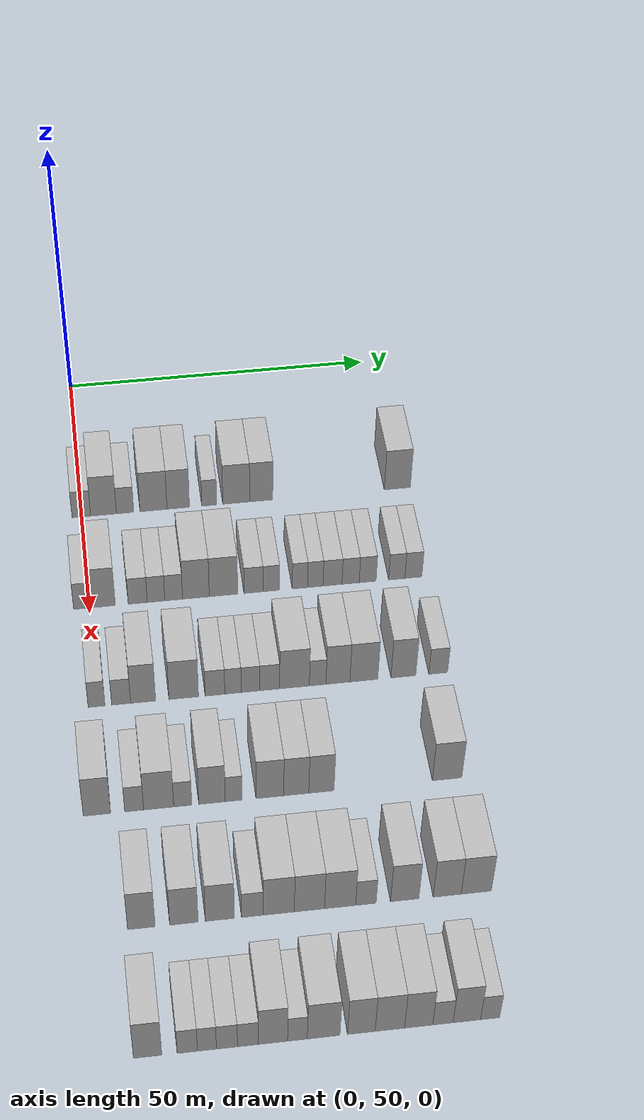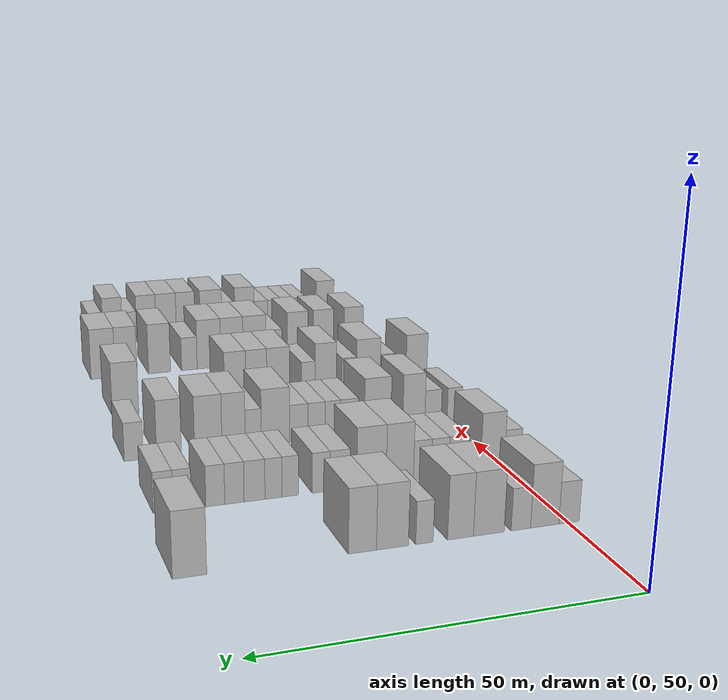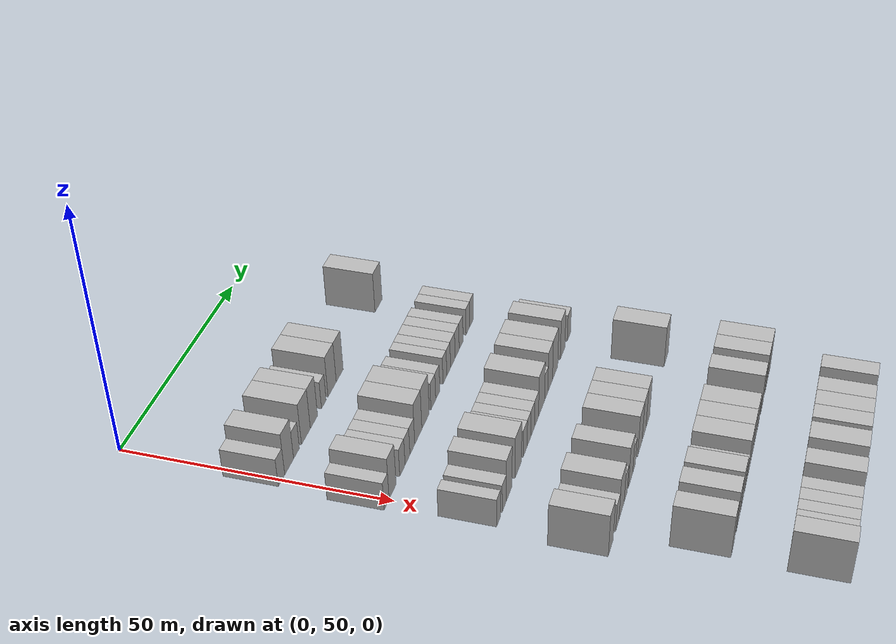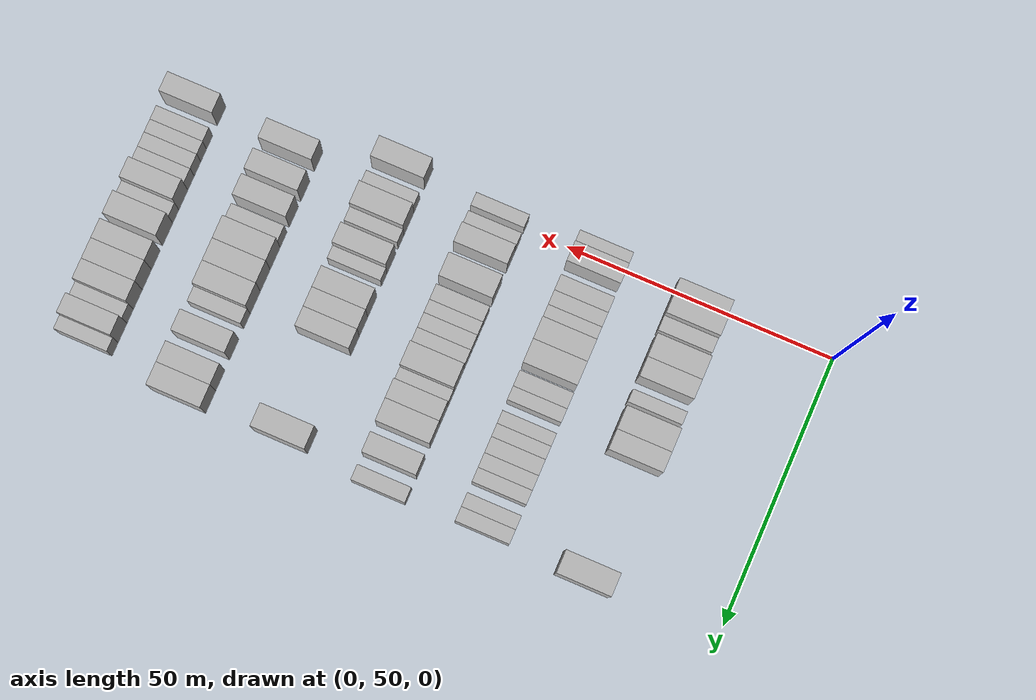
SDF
<sdf version="1.6">
 <world name="default">
  <model name="building_107">
   <static>1</static>
   <pose>25.0000 49.9032 0 0.000000 0.000000 0.000000</pose>
   <link name="link">
    <pose>0 0 3.00 0 0 0</pose>
    <collision name="collision"><geometry><box><size>10.0000 2.9846 6.0000</size></box></geometry></collision>
    <visual name="visual">
     <cast_shadows>0</cast_shadows>
     <geometry><box><size>10.0000 2.9846 6.0000</size></box></geometry>
     <material>
      <script>
       <uri>model://HANNAS_wall/materials/scripts</uri>
       <uri>model://HANNAS_wall/materials/textures</uri>
       <name>vrc/HANNAS_wall</name>
      </script>
     </material>
    </visual>
   </link>
  </model>
  <model name="building_108">
   <static>1</static>
   <pose>25.0000 53.4667 0 0.000000 0.000000 0.000000</pose>
   <link name="link">
    <pose>0 0 4.50 0 0 0</pose>
    <collision name="collision"><geometry><box><size>10.0000 4.1426 9.0000</size></box></geometry></collision>
    <visual name="visual">
     <cast_shadows>0</cast_shadows>
     <geometry><box><size>10.0000 4.1426 9.0000</size></box></geometry>
     <material>
      <script>
       <uri>model://HANNAS_wall/materials/scripts</uri>
       <uri>model://HANNAS_wall/materials/textures</uri>
       <name>vrc/HANNAS_wall</name>
      </script>
     </material>
    </visual>
   </link>
  </model>
  <model name="building_109">
   <static>1</static>
   <pose>25.0000 56.9367 0 0.000000 0.000000 0.000000</pose>
   <link name="link">
    <pose>0 0 3.00 0 0 0</pose>
    <collision name="collision"><geometry><box><size>10.0000 2.7974 6.0000</size></box></geometry></collision>
    <visual name="visual">
     <cast_shadows>0</cast_shadows>
     <geometry><box><size>10.0000 2.7974 6.0000</size></box></geometry>
     <material>
      <script>
       <uri>model://HANNAS_wall/materials/scripts</uri>
       <uri>model://HANNAS_wall/materials/textures</uri>
       <name>vrc/HANNAS_wall</name>
      </script>
     </material>
    </visual>
   </link>
  </model>
  <model name="building_110">
   <static>1</static>
   <pose>25.0000 61.5183 0 0.000000 0.000000 0.000000</pose>
   <link name="link">
    <pose>0 0 4.50 0 0 0</pose>
    <collision name="collision"><geometry><box><size>10.0000 4.3657 9.0000</size></box></geometry></collision>
    <visual name="visual">
     <cast_shadows>0</cast_shadows>
     <geometry><box><size>10.0000 4.3657 9.0000</size></box></geometry>
     <material>
      <script>
       <uri>model://HANNAS_wall/materials/scripts</uri>
       <uri>model://HANNAS_wall/materials/textures</uri>
       <name>vrc/HANNAS_wall</name>
      </script>
     </material>
    </visual>
   </link>
  </model>
  <model name="building_111">
   <static>1</static>
   <pose>25.0000 65.5187 0 0.000000 0.000000 0.000000</pose>
   <link name="link">
    <pose>0 0 4.50 0 0 0</pose>
    <collision name="collision"><geometry><box><size>10.0000 3.6352 9.0000</size></box></geometry></collision>
    <visual name="visual">
     <cast_shadows>0</cast_shadows>
     <geometry><box><size>10.0000 3.6352 9.0000</size></box></geometry>
     <material>
      <script>
       <uri>model://HANNAS_wall/materials/scripts</uri>
       <uri>model://HANNAS_wall/materials/textures</uri>
       <name>vrc/HANNAS_wall</name>
      </script>
     </material>
    </visual>
   </link>
  </model>
  <model name="building_112">
   <static>1</static>
   <pose>25.0000 70.5389 0 0.000000 0.000000 0.000000</pose>
   <link name="link">
    <pose>0 0 3.00 0 0 0</pose>
    <collision name="collision"><geometry><box><size>10.0000 2.4050 6.0000</size></box></geometry></collision>
    <visual name="visual">
     <cast_shadows>0</cast_shadows>
     <geometry><box><size>10.0000 2.4050 6.0000</size></box></geometry>
     <material>
      <script>
       <uri>model://HANNAS_wall/materials/scripts</uri>
       <uri>model://HANNAS_wall/materials/textures</uri>
       <name>vrc/HANNAS_wall</name>
      </script>
     </material>
    </visual>
   </link>
  </model>
  <model name="building_113">
   <static>1</static>
   <pose>25.0000 74.9182 0 0.000000 0.000000 0.000000</pose>
   <link name="link">
    <pose>0 0 4.50 0 0 0</pose>
    <collision name="collision"><geometry><box><size>10.0000 4.3535 9.0000</size></box></geometry></collision>
    <visual name="visual">
     <cast_shadows>0</cast_shadows>
     <geometry><box><size>10.0000 4.3535 9.0000</size></box></geometry>
     <material>
      <script>
       <uri>model://HANNAS_wall/materials/scripts</uri>
       <uri>model://HANNAS_wall/materials/textures</uri>
       <name>vrc/HANNAS_wall</name>
      </script>
     </material>
    </visual>
   </link>
  </model>
  <model name="building_114">
   <static>1</static>
   <pose>25.0000 78.9803 0 0.000000 0.000000 0.000000</pose>
   <link name="link">
    <pose>0 0 4.50 0 0 0</pose>
    <collision name="collision"><geometry><box><size>10.0000 3.7707 9.0000</size></box></geometry></collision>
    <visual name="visual">
     <cast_shadows>0</cast_shadows>
     <geometry><box><size>10.0000 3.7707 9.0000</size></box></geometry>
     <material>
      <script>
       <uri>model://HANNAS_wall/materials/scripts</uri>
       <uri>model://HANNAS_wall/materials/textures</uri>
       <name>vrc/HANNAS_wall</name>
      </script>
     </material>
    </visual>
   </link>
  </model>
  <model name="building_115">
   <static>1</static>
   <pose>25.0000 101.2923 0 0.000000 0.000000 0.000000</pose>
   <link name="link">
    <pose>0 0 4.50 0 0 0</pose>
    <collision name="collision"><geometry><box><size>10.0000 4.2845 9.0000</size></box></geometry></collision>
    <visual name="visual">
     <cast_shadows>0</cast_shadows>
     <geometry><box><size>10.0000 4.2845 9.0000</size></box></geometry>
     <material>
      <script>
       <uri>model://HANNAS_wall/materials/scripts</uri>
       <uri>model://HANNAS_wall/materials/textures</uri>
       <name>vrc/HANNAS_wall</name>
      </script>
     </material>
    </visual>
   </link>
  </model>
  <model name="building_266">
   <static>1</static>
   <pose>44.0000 48.8604 0 0.000000 0.000000 0.000000</pose>
   <link name="link">
    <pose>0 0 3.00 0 0 0</pose>
    <collision name="collision"><geometry><box><size>10.0000 2.6639 6.0000</size></box></geometry></collision>
    <visual name="visual">
     <cast_shadows>0</cast_shadows>
     <geometry><box><size>10.0000 2.6639 6.0000</size></box></geometry>
     <material>
      <script>
       <uri>model://HANNAS_wall/materials/scripts</uri>
       <uri>model://HANNAS_wall/materials/textures</uri>
       <name>vrc/HANNAS_wall</name>
      </script>
     </material>
    </visual>
   </link>
  </model>
  <model name="building_267">
   <static>1</static>
   <pose>44.0000 52.0807 0 0.000000 0.000000 0.000000</pose>
   <link name="link">
    <pose>0 0 4.50 0 0 0</pose>
    <collision name="collision"><geometry><box><size>10.0000 3.7768 9.0000</size></box></geometry></collision>
    <visual name="visual">
     <cast_shadows>0</cast_shadows>
     <geometry><box><size>10.0000 3.7768 9.0000</size></box></geometry>
     <material>
      <script>
       <uri>model://HANNAS_wall/materials/scripts</uri>
       <uri>model://HANNAS_wall/materials/textures</uri>
       <name>vrc/HANNAS_wall</name>
      </script>
     </material>
    </visual>
   </link>
  </model>
  <model name="building_268">
   <static>1</static>
   <pose>44.0000 57.4391 0 0.000000 0.000000 0.000000</pose>
   <link name="link">
    <pose>0 0 3.00 0 0 0</pose>
    <collision name="collision"><geometry><box><size>10.0000 2.9401 6.0000</size></box></geometry></collision>
    <visual name="visual">
     <cast_shadows>0</cast_shadows>
     <geometry><box><size>10.0000 2.9401 6.0000</size></box></geometry>
     <material>
      <script>
       <uri>model://HANNAS_wall/materials/scripts</uri>
       <uri>model://HANNAS_wall/materials/textures</uri>
       <name>vrc/HANNAS_wall</name>
      </script>
     </material>
    </visual>
   </link>
  </model>
  <model name="building_269">
   <static>1</static>
   <pose>44.0000 60.2776 0 0.000000 0.000000 0.000000</pose>
   <link name="link">
    <pose>0 0 3.00 0 0 0</pose>
    <collision name="collision"><geometry><box><size>10.0000 2.7367 6.0000</size></box></geometry></collision>
    <visual name="visual">
     <cast_shadows>0</cast_shadows>
     <geometry><box><size>10.0000 2.7367 6.0000</size></box></geometry>
     <material>
      <script>
       <uri>model://HANNAS_wall/materials/scripts</uri>
       <uri>model://HANNAS_wall/materials/textures</uri>
       <name>vrc/HANNAS_wall</name>
      </script>
     </material>
    </visual>
   </link>
  </model>
  <model name="building_270">
   <static>1</static>
   <pose>44.0000 63.0265 0 0.000000 0.000000 0.000000</pose>
   <link name="link">
    <pose>0 0 3.00 0 0 0</pose>
    <collision name="collision"><geometry><box><size>10.0000 2.7612 6.0000</size></box></geometry></collision>
    <visual name="visual">
     <cast_shadows>0</cast_shadows>
     <geometry><box><size>10.0000 2.7612 6.0000</size></box></geometry>
     <material>
      <script>
       <uri>model://HANNAS_wall/materials/scripts</uri>
       <uri>model://HANNAS_wall/materials/textures</uri>
       <name>vrc/HANNAS_wall</name>
      </script>
     </material>
    </visual>
   </link>
  </model>
  <model name="building_271">
   <static>1</static>
   <pose>44.0000 66.4823 0 0.000000 0.000000 0.000000</pose>
   <link name="link">
    <pose>0 0 4.50 0 0 0</pose>
    <collision name="collision"><geometry><box><size>10.0000 4.1504 9.0000</size></box></geometry></collision>
    <visual name="visual">
     <cast_shadows>0</cast_shadows>
     <geometry><box><size>10.0000 4.1504 9.0000</size></box></geometry>
     <material>
      <script>
       <uri>model://HANNAS_wall/materials/scripts</uri>
       <uri>model://HANNAS_wall/materials/textures</uri>
       <name>vrc/HANNAS_wall</name>
      </script>
     </material>
    </visual>
   </link>
  </model>
  <model name="building_272">
   <static>1</static>
   <pose>44.0000 70.7684 0 0.000000 0.000000 0.000000</pose>
   <link name="link">
    <pose>0 0 4.50 0 0 0</pose>
    <collision name="collision"><geometry><box><size>10.0000 4.4217 9.0000</size></box></geometry></collision>
    <visual name="visual">
     <cast_shadows>0</cast_shadows>
     <geometry><box><size>10.0000 4.4217 9.0000</size></box></geometry>
     <material>
      <script>
       <uri>model://HANNAS_wall/materials/scripts</uri>
       <uri>model://HANNAS_wall/materials/textures</uri>
       <name>vrc/HANNAS_wall</name>
      </script>
     </material>
    </visual>
   </link>
  </model>
  <model name="building_273">
   <static>1</static>
   <pose>44.0000 75.4697 0 0.000000 0.000000 0.000000</pose>
   <link name="link">
    <pose>0 0 3.00 0 0 0</pose>
    <collision name="collision"><geometry><box><size>10.0000 2.9808 6.0000</size></box></geometry></collision>
    <visual name="visual">
     <cast_shadows>0</cast_shadows>
     <geometry><box><size>10.0000 2.9808 6.0000</size></box></geometry>
     <material>
      <script>
       <uri>model://HANNAS_wall/materials/scripts</uri>
       <uri>model://HANNAS_wall/materials/textures</uri>
       <name>vrc/HANNAS_wall</name>
      </script>
     </material>
    </visual>
   </link>
  </model>
  <model name="building_274">
   <static>1</static>
   <pose>44.0000 78.2477 0 0.000000 0.000000 0.000000</pose>
   <link name="link">
    <pose>0 0 3.00 0 0 0</pose>
    <collision name="collision"><geometry><box><size>10.0000 2.5753 6.0000</size></box></geometry></collision>
    <visual name="visual">
     <cast_shadows>0</cast_shadows>
     <geometry><box><size>10.0000 2.5753 6.0000</size></box></geometry>
     <material>
      <script>
       <uri>model://HANNAS_wall/materials/scripts</uri>
       <uri>model://HANNAS_wall/materials/textures</uri>
       <name>vrc/HANNAS_wall</name>
      </script>
     </material>
    </visual>
   </link>
  </model>
  <model name="building_275">
   <static>1</static>
   <pose>44.0000 82.7379 0 0.000000 0.000000 0.000000</pose>
   <link name="link">
    <pose>0 0 3.00 0 0 0</pose>
    <collision name="collision"><geometry><box><size>10.0000 2.4050 6.0000</size></box></geometry></collision>
    <visual name="visual">
     <cast_shadows>0</cast_shadows>
     <geometry><box><size>10.0000 2.4050 6.0000</size></box></geometry>
     <material>
      <script>
       <uri>model://HANNAS_wall/materials/scripts</uri>
       <uri>model://HANNAS_wall/materials/textures</uri>
       <name>vrc/HANNAS_wall</name>
      </script>
     </material>
    </visual>
   </link>
  </model>
  <model name="building_276">
   <static>1</static>
   <pose>44.0000 85.1588 0 0.000000 0.000000 0.000000</pose>
   <link name="link">
    <pose>0 0 3.00 0 0 0</pose>
    <collision name="collision"><geometry><box><size>10.0000 2.4369 6.0000</size></box></geometry></collision>
    <visual name="visual">
     <cast_shadows>0</cast_shadows>
     <geometry><box><size>10.0000 2.4369 6.0000</size></box></geometry>
     <material>
      <script>
       <uri>model://HANNAS_wall/materials/scripts</uri>
       <uri>model://HANNAS_wall/materials/textures</uri>
       <name>vrc/HANNAS_wall</name>
      </script>
     </material>
    </visual>
   </link>
  </model>
  <model name="building_277">
   <static>1</static>
   <pose>44.0000 87.8707 0 0.000000 0.000000 0.000000</pose>
   <link name="link">
    <pose>0 0 3.00 0 0 0</pose>
    <collision name="collision"><geometry><box><size>10.0000 2.9868 6.0000</size></box></geometry></collision>
    <visual name="visual">
     <cast_shadows>0</cast_shadows>
     <geometry><box><size>10.0000 2.9868 6.0000</size></box></geometry>
     <material>
      <script>
       <uri>model://HANNAS_wall/materials/scripts</uri>
       <uri>model://HANNAS_wall/materials/textures</uri>
       <name>vrc/HANNAS_wall</name>
      </script>
     </material>
    </visual>
   </link>
  </model>
  <model name="building_278">
   <static>1</static>
   <pose>44.0000 90.7270 0 0.000000 0.000000 0.000000</pose>
   <link name="link">
    <pose>0 0 3.00 0 0 0</pose>
    <collision name="collision"><geometry><box><size>10.0000 2.7259 6.0000</size></box></geometry></collision>
    <visual name="visual">
     <cast_shadows>0</cast_shadows>
     <geometry><box><size>10.0000 2.7259 6.0000</size></box></geometry>
     <material>
      <script>
       <uri>model://HANNAS_wall/materials/scripts</uri>
       <uri>model://HANNAS_wall/materials/textures</uri>
       <name>vrc/HANNAS_wall</name>
      </script>
     </material>
    </visual>
   </link>
  </model>
  <model name="building_279">
   <static>1</static>
   <pose>44.0000 93.4165 0 0.000000 0.000000 0.000000</pose>
   <link name="link">
    <pose>0 0 3.00 0 0 0</pose>
    <collision name="collision"><geometry><box><size>10.0000 2.6531 6.0000</size></box></geometry></collision>
    <visual name="visual">
     <cast_shadows>0</cast_shadows>
     <geometry><box><size>10.0000 2.6531 6.0000</size></box></geometry>
     <material>
      <script>
       <uri>model://HANNAS_wall/materials/scripts</uri>
       <uri>model://HANNAS_wall/materials/textures</uri>
       <name>vrc/HANNAS_wall</name>
      </script>
     </material>
    </visual>
   </link>
  </model>
  <model name="building_280">
   <static>1</static>
   <pose>44.0000 98.0251 0 0.000000 0.000000 0.000000</pose>
   <link name="link">
    <pose>0 0 3.00 0 0 0</pose>
    <collision name="collision"><geometry><box><size>10.0000 2.5642 6.0000</size></box></geometry></collision>
    <visual name="visual">
     <cast_shadows>0</cast_shadows>
     <geometry><box><size>10.0000 2.5642 6.0000</size></box></geometry>
     <material>
      <script>
       <uri>model://HANNAS_wall/materials/scripts</uri>
       <uri>model://HANNAS_wall/materials/textures</uri>
       <name>vrc/HANNAS_wall</name>
      </script>
     </material>
    </visual>
   </link>
  </model>
  <model name="building_281">
   <static>1</static>
   <pose>44.0000 100.6477 0 0.000000 0.000000 0.000000</pose>
   <link name="link">
    <pose>0 0 3.00 0 0 0</pose>
    <collision name="collision"><geometry><box><size>10.0000 2.6808 6.0000</size></box></geometry></collision>
    <visual name="visual">
     <cast_shadows>0</cast_shadows>
     <geometry><box><size>10.0000 2.6808 6.0000</size></box></geometry>
     <material>
      <script>
       <uri>model://HANNAS_wall/materials/scripts</uri>
       <uri>model://HANNAS_wall/materials/textures</uri>
       <name>vrc/HANNAS_wall</name>
      </script>
     </material>
    </visual>
   </link>
  </model>
  <model name="building_434">
   <static>1</static>
   <pose>63.0000 49.7858 0 0.000000 0.000000 0.000000</pose>
   <link name="link">
    <pose>0 0 3.00 0 0 0</pose>
    <collision name="collision"><geometry><box><size>10.0000 2.4844 6.0000</size></box></geometry></collision>
    <visual name="visual">
     <cast_shadows>0</cast_shadows>
     <geometry><box><size>10.0000 2.4844 6.0000</size></box></geometry>
     <material>
      <script>
       <uri>model://HANNAS_wall/materials/scripts</uri>
       <uri>model://HANNAS_wall/materials/textures</uri>
       <name>vrc/HANNAS_wall</name>
      </script>
     </material>
    </visual>
   </link>
  </model>
  <model name="building_435">
   <static>1</static>
   <pose>63.0000 53.4321 0 0.000000 0.000000 0.000000</pose>
   <link name="link">
    <pose>0 0 3.00 0 0 0</pose>
    <collision name="collision"><geometry><box><size>10.0000 2.8081 6.0000</size></box></geometry></collision>
    <visual name="visual">
     <cast_shadows>0</cast_shadows>
     <geometry><box><size>10.0000 2.8081 6.0000</size></box></geometry>
     <material>
      <script>
       <uri>model://HANNAS_wall/materials/scripts</uri>
       <uri>model://HANNAS_wall/materials/textures</uri>
       <name>vrc/HANNAS_wall</name>
      </script>
     </material>
    </visual>
   </link>
  </model>
  <model name="building_436">
   <static>1</static>
   <pose>63.0000 56.6930 0 0.000000 0.000000 0.000000</pose>
   <link name="link">
    <pose>0 0 4.50 0 0 0</pose>
    <collision name="collision"><geometry><box><size>10.0000 3.7136 9.0000</size></box></geometry></collision>
    <visual name="visual">
     <cast_shadows>0</cast_shadows>
     <geometry><box><size>10.0000 3.7136 9.0000</size></box></geometry>
     <material>
      <script>
       <uri>model://HANNAS_wall/materials/scripts</uri>
       <uri>model://HANNAS_wall/materials/textures</uri>
       <name>vrc/HANNAS_wall</name>
      </script>
     </material>
    </visual>
   </link>
  </model>
  <model name="building_437">
   <static>1</static>
   <pose>63.0000 62.7531 0 0.000000 0.000000 0.000000</pose>
   <link name="link">
    <pose>0 0 4.50 0 0 0</pose>
    <collision name="collision"><geometry><box><size>10.0000 4.4066 9.0000</size></box></geometry></collision>
    <visual name="visual">
     <cast_shadows>0</cast_shadows>
     <geometry><box><size>10.0000 4.4066 9.0000</size></box></geometry>
     <material>
      <script>
       <uri>model://HANNAS_wall/materials/scripts</uri>
       <uri>model://HANNAS_wall/materials/textures</uri>
       <name>vrc/HANNAS_wall</name>
      </script>
     </material>
    </visual>
   </link>
  </model>
  <model name="building_438">
   <static>1</static>
   <pose>63.0000 67.4235 0 0.000000 0.000000 0.000000</pose>
   <link name="link">
    <pose>0 0 3.00 0 0 0</pose>
    <collision name="collision"><geometry><box><size>10.0000 2.9343 6.0000</size></box></geometry></collision>
    <visual name="visual">
     <cast_shadows>0</cast_shadows>
     <geometry><box><size>10.0000 2.9343 6.0000</size></box></geometry>
     <material>
      <script>
       <uri>model://HANNAS_wall/materials/scripts</uri>
       <uri>model://HANNAS_wall/materials/textures</uri>
       <name>vrc/HANNAS_wall</name>
      </script>
     </material>
    </visual>
   </link>
  </model>
  <model name="building_439">
   <static>1</static>
   <pose>63.0000 70.1217 0 0.000000 0.000000 0.000000</pose>
   <link name="link">
    <pose>0 0 3.00 0 0 0</pose>
    <collision name="collision"><geometry><box><size>10.0000 2.4621 6.0000</size></box></geometry></collision>
    <visual name="visual">
     <cast_shadows>0</cast_shadows>
     <geometry><box><size>10.0000 2.4621 6.0000</size></box></geometry>
     <material>
      <script>
       <uri>model://HANNAS_wall/materials/scripts</uri>
       <uri>model://HANNAS_wall/materials/textures</uri>
       <name>vrc/HANNAS_wall</name>
      </script>
     </material>
    </visual>
   </link>
  </model>
  <model name="building_440">
   <static>1</static>
   <pose>63.0000 72.7535 0 0.000000 0.000000 0.000000</pose>
   <link name="link">
    <pose>0 0 3.00 0 0 0</pose>
    <collision name="collision"><geometry><box><size>10.0000 2.8014 6.0000</size></box></geometry></collision>
    <visual name="visual">
     <cast_shadows>0</cast_shadows>
     <geometry><box><size>10.0000 2.8014 6.0000</size></box></geometry>
     <material>
      <script>
       <uri>model://HANNAS_wall/materials/scripts</uri>
       <uri>model://HANNAS_wall/materials/textures</uri>
       <name>vrc/HANNAS_wall</name>
      </script>
     </material>
    </visual>
   </link>
  </model>
  <model name="building_441">
   <static>1</static>
   <pose>63.0000 75.6324 0 0.000000 0.000000 0.000000</pose>
   <link name="link">
    <pose>0 0 3.00 0 0 0</pose>
    <collision name="collision"><geometry><box><size>10.0000 2.9565 6.0000</size></box></geometry></collision>
    <visual name="visual">
     <cast_shadows>0</cast_shadows>
     <geometry><box><size>10.0000 2.9565 6.0000</size></box></geometry>
     <material>
      <script>
       <uri>model://HANNAS_wall/materials/scripts</uri>
       <uri>model://HANNAS_wall/materials/textures</uri>
       <name>vrc/HANNAS_wall</name>
      </script>
     </material>
    </visual>
   </link>
  </model>
  <model name="building_442">
   <static>1</static>
   <pose>63.0000 79.3558 0 0.000000 0.000000 0.000000</pose>
   <link name="link">
    <pose>0 0 4.50 0 0 0</pose>
    <collision name="collision"><geometry><box><size>10.0000 4.4901 9.0000</size></box></geometry></collision>
    <visual name="visual">
     <cast_shadows>0</cast_shadows>
     <geometry><box><size>10.0000 4.4901 9.0000</size></box></geometry>
     <material>
      <script>
       <uri>model://HANNAS_wall/materials/scripts</uri>
       <uri>model://HANNAS_wall/materials/textures</uri>
       <name>vrc/HANNAS_wall</name>
      </script>
     </material>
    </visual>
   </link>
  </model>
  <model name="building_443">
   <static>1</static>
   <pose>63.0000 82.8578 0 0.000000 0.000000 0.000000</pose>
   <link name="link">
    <pose>0 0 3.00 0 0 0</pose>
    <collision name="collision"><geometry><box><size>10.0000 2.5139 6.0000</size></box></geometry></collision>
    <visual name="visual">
     <cast_shadows>0</cast_shadows>
     <geometry><box><size>10.0000 2.5139 6.0000</size></box></geometry>
     <material>
      <script>
       <uri>model://HANNAS_wall/materials/scripts</uri>
       <uri>model://HANNAS_wall/materials/textures</uri>
       <name>vrc/HANNAS_wall</name>
      </script>
     </material>
    </visual>
   </link>
  </model>
  <model name="building_444">
   <static>1</static>
   <pose>63.0000 85.9253 0 0.000000 0.000000 0.000000</pose>
   <link name="link">
    <pose>0 0 4.50 0 0 0</pose>
    <collision name="collision"><geometry><box><size>10.0000 3.6211 9.0000</size></box></geometry></collision>
    <visual name="visual">
     <cast_shadows>0</cast_shadows>
     <geometry><box><size>10.0000 3.6211 9.0000</size></box></geometry>
     <material>
      <script>
       <uri>model://HANNAS_wall/materials/scripts</uri>
       <uri>model://HANNAS_wall/materials/textures</uri>
       <name>vrc/HANNAS_wall</name>
      </script>
     </material>
    </visual>
   </link>
  </model>
  <model name="building_445">
   <static>1</static>
   <pose>63.0000 89.8462 0 0.000000 0.000000 0.000000</pose>
   <link name="link">
    <pose>0 0 4.50 0 0 0</pose>
    <collision name="collision"><geometry><box><size>10.0000 4.2208 9.0000</size></box></geometry></collision>
    <visual name="visual">
     <cast_shadows>0</cast_shadows>
     <geometry><box><size>10.0000 4.2208 9.0000</size></box></geometry>
     <material>
      <script>
       <uri>model://HANNAS_wall/materials/scripts</uri>
       <uri>model://HANNAS_wall/materials/textures</uri>
       <name>vrc/HANNAS_wall</name>
      </script>
     </material>
    </visual>
   </link>
  </model>
  <model name="building_446">
   <static>1</static>
   <pose>63.0000 95.8362 0 0.000000 0.000000 0.000000</pose>
   <link name="link">
    <pose>0 0 4.50 0 0 0</pose>
    <collision name="collision"><geometry><box><size>10.0000 3.7591 9.0000</size></box></geometry></collision>
    <visual name="visual">
     <cast_shadows>0</cast_shadows>
     <geometry><box><size>10.0000 3.7591 9.0000</size></box></geometry>
     <material>
      <script>
       <uri>model://HANNAS_wall/materials/scripts</uri>
       <uri>model://HANNAS_wall/materials/textures</uri>
       <name>vrc/HANNAS_wall</name>
      </script>
     </material>
    </visual>
   </link>
  </model>
  <model name="building_447">
   <static>1</static>
   <pose>63.0000 101.1414 0 0.000000 0.000000 0.000000</pose>
   <link name="link">
    <pose>0 0 3.00 0 0 0</pose>
    <collision name="collision"><geometry><box><size>10.0000 2.8515 6.0000</size></box></geometry></collision>
    <visual name="visual">
     <cast_shadows>0</cast_shadows>
     <geometry><box><size>10.0000 2.8515 6.0000</size></box></geometry>
     <material>
      <script>
       <uri>model://HANNAS_wall/materials/scripts</uri>
       <uri>model://HANNAS_wall/materials/textures</uri>
       <name>vrc/HANNAS_wall</name>
      </script>
     </material>
    </visual>
   </link>
  </model>
  <model name="building_610">
   <static>1</static>
   <pose>82.0000 48.5655 0 0.000000 0.000000 0.000000</pose>
   <link name="link">
    <pose>0 0 4.50 0 0 0</pose>
    <collision name="collision"><geometry><box><size>10.0000 3.8829 9.0000</size></box></geometry></collision>
    <visual name="visual">
     <cast_shadows>0</cast_shadows>
     <geometry><box><size>10.0000 3.8829 9.0000</size></box></geometry>
     <material>
      <script>
       <uri>model://HANNAS_wall/materials/scripts</uri>
       <uri>model://HANNAS_wall/materials/textures</uri>
       <name>vrc/HANNAS_wall</name>
      </script>
     </material>
    </visual>
   </link>
  </model>
  <model name="building_611">
   <static>1</static>
   <pose>82.0000 53.8528 0 0.000000 0.000000 0.000000</pose>
   <link name="link">
    <pose>0 0 3.00 0 0 0</pose>
    <collision name="collision"><geometry><box><size>10.0000 2.6918 6.0000</size></box></geometry></collision>
    <visual name="visual">
     <cast_shadows>0</cast_shadows>
     <geometry><box><size>10.0000 2.6918 6.0000</size></box></geometry>
     <material>
      <script>
       <uri>model://HANNAS_wall/materials/scripts</uri>
       <uri>model://HANNAS_wall/materials/textures</uri>
       <name>vrc/HANNAS_wall</name>
      </script>
     </material>
    </visual>
   </link>
  </model>
  <model name="building_612">
   <static>1</static>
   <pose>82.0000 57.3455 0 0.000000 0.000000 0.000000</pose>
   <link name="link">
    <pose>0 0 4.50 0 0 0</pose>
    <collision name="collision"><geometry><box><size>10.0000 4.2936 9.0000</size></box></geometry></collision>
    <visual name="visual">
     <cast_shadows>0</cast_shadows>
     <geometry><box><size>10.0000 4.2936 9.0000</size></box></geometry>
     <material>
      <script>
       <uri>model://HANNAS_wall/materials/scripts</uri>
       <uri>model://HANNAS_wall/materials/textures</uri>
       <name>vrc/HANNAS_wall</name>
      </script>
     </material>
    </visual>
   </link>
  </model>
  <model name="building_613">
   <static>1</static>
   <pose>82.0000 60.7840 0 0.000000 0.000000 0.000000</pose>
   <link name="link">
    <pose>0 0 3.00 0 0 0</pose>
    <collision name="collision"><geometry><box><size>10.0000 2.5834 6.0000</size></box></geometry></collision>
    <visual name="visual">
     <cast_shadows>0</cast_shadows>
     <geometry><box><size>10.0000 2.5834 6.0000</size></box></geometry>
     <material>
      <script>
       <uri>model://HANNAS_wall/materials/scripts</uri>
       <uri>model://HANNAS_wall/materials/textures</uri>
       <name>vrc/HANNAS_wall</name>
      </script>
     </material>
    </visual>
   </link>
  </model>
  <model name="building_614">
   <static>1</static>
   <pose>82.0000 64.9719 0 0.000000 0.000000 0.000000</pose>
   <link name="link">
    <pose>0 0 4.50 0 0 0</pose>
    <collision name="collision"><geometry><box><size>10.0000 3.7923 9.0000</size></box></geometry></collision>
    <visual name="visual">
     <cast_shadows>0</cast_shadows>
     <geometry><box><size>10.0000 3.7923 9.0000</size></box></geometry>
     <material>
      <script>
       <uri>model://HANNAS_wall/materials/scripts</uri>
       <uri>model://HANNAS_wall/materials/textures</uri>
       <name>vrc/HANNAS_wall</name>
      </script>
     </material>
    </visual>
   </link>
  </model>
  <model name="building_615">
   <static>1</static>
   <pose>82.0000 68.0755 0 0.000000 0.000000 0.000000</pose>
   <link name="link">
    <pose>0 0 3.00 0 0 0</pose>
    <collision name="collision"><geometry><box><size>10.0000 2.4149 6.0000</size></box></geometry></collision>
    <visual name="visual">
     <cast_shadows>0</cast_shadows>
     <geometry><box><size>10.0000 2.4149 6.0000</size></box></geometry>
     <material>
      <script>
       <uri>model://HANNAS_wall/materials/scripts</uri>
       <uri>model://HANNAS_wall/materials/textures</uri>
       <name>vrc/HANNAS_wall</name>
      </script>
     </material>
    </visual>
   </link>
  </model>
  <model name="building_616">
   <static>1</static>
   <pose>82.0000 73.2773 0 0.000000 0.000000 0.000000</pose>
   <link name="link">
    <pose>0 0 4.50 0 0 0</pose>
    <collision name="collision"><geometry><box><size>10.0000 3.9888 9.0000</size></box></geometry></collision>
    <visual name="visual">
     <cast_shadows>0</cast_shadows>
     <geometry><box><size>10.0000 3.9888 9.0000</size></box></geometry>
     <material>
      <script>
       <uri>model://HANNAS_wall/materials/scripts</uri>
       <uri>model://HANNAS_wall/materials/textures</uri>
       <name>vrc/HANNAS_wall</name>
      </script>
     </material>
    </visual>
   </link>
  </model>
  <model name="building_617">
   <static>1</static>
   <pose>82.0000 77.0849 0 0.000000 0.000000 0.000000</pose>
   <link name="link">
    <pose>0 0 4.50 0 0 0</pose>
    <collision name="collision"><geometry><box><size>10.0000 3.6264 9.0000</size></box></geometry></collision>
    <visual name="visual">
     <cast_shadows>0</cast_shadows>
     <geometry><box><size>10.0000 3.6264 9.0000</size></box></geometry>
     <material>
      <script>
       <uri>model://HANNAS_wall/materials/scripts</uri>
       <uri>model://HANNAS_wall/materials/textures</uri>
       <name>vrc/HANNAS_wall</name>
      </script>
     </material>
    </visual>
   </link>
  </model>
  <model name="building_618">
   <static>1</static>
   <pose>82.0000 80.7169 0 0.000000 0.000000 0.000000</pose>
   <link name="link">
    <pose>0 0 4.50 0 0 0</pose>
    <collision name="collision"><geometry><box><size>10.0000 3.6377 9.0000</size></box></geometry></collision>
    <visual name="visual">
     <cast_shadows>0</cast_shadows>
     <geometry><box><size>10.0000 3.6377 9.0000</size></box></geometry>
     <material>
      <script>
       <uri>model://HANNAS_wall/materials/scripts</uri>
       <uri>model://HANNAS_wall/materials/textures</uri>
       <name>vrc/HANNAS_wall</name>
      </script>
     </material>
    </visual>
   </link>
  </model>
  <model name="building_619">
   <static>1</static>
   <pose>82.0000 98.9898 0 0.000000 0.000000 0.000000</pose>
   <link name="link">
    <pose>0 0 4.50 0 0 0</pose>
    <collision name="collision"><geometry><box><size>10.0000 4.3027 9.0000</size></box></geometry></collision>
    <visual name="visual">
     <cast_shadows>0</cast_shadows>
     <geometry><box><size>10.0000 4.3027 9.0000</size></box></geometry>
     <material>
      <script>
       <uri>model://HANNAS_wall/materials/scripts</uri>
       <uri>model://HANNAS_wall/materials/textures</uri>
       <name>vrc/HANNAS_wall</name>
      </script>
     </material>
    </visual>
   </link>
  </model>
  <model name="building_775">
   <static>1</static>
   <pose>101.0000 53.3118 0 0.000000 0.000000 0.000000</pose>
   <link name="link">
    <pose>0 0 4.50 0 0 0</pose>
    <collision name="collision"><geometry><box><size>10.0000 3.7400 9.0000</size></box></geometry></collision>
    <visual name="visual">
     <cast_shadows>0</cast_shadows>
     <geometry><box><size>10.0000 3.7400 9.0000</size></box></geometry>
     <material>
      <script>
       <uri>model://HANNAS_wall/materials/scripts</uri>
       <uri>model://HANNAS_wall/materials/textures</uri>
       <name>vrc/HANNAS_wall</name>
      </script>
     </material>
    </visual>
   </link>
  </model>
  <model name="building_776">
   <static>1</static>
   <pose>101.0000 59.1225 0 0.000000 0.000000 0.000000</pose>
   <link name="link">
    <pose>0 0 4.50 0 0 0</pose>
    <collision name="collision"><geometry><box><size>10.0000 3.8813 9.0000</size></box></geometry></collision>
    <visual name="visual">
     <cast_shadows>0</cast_shadows>
     <geometry><box><size>10.0000 3.8813 9.0000</size></box></geometry>
     <material>
      <script>
       <uri>model://HANNAS_wall/materials/scripts</uri>
       <uri>model://HANNAS_wall/materials/textures</uri>
       <name>vrc/HANNAS_wall</name>
      </script>
     </material>
    </visual>
   </link>
  </model>
  <model name="building_777">
   <static>1</static>
   <pose>101.0000 64.0426 0 0.000000 0.000000 0.000000</pose>
   <link name="link">
    <pose>0 0 4.50 0 0 0</pose>
    <collision name="collision"><geometry><box><size>10.0000 3.9589 9.0000</size></box></geometry></collision>
    <visual name="visual">
     <cast_shadows>0</cast_shadows>
     <geometry><box><size>10.0000 3.9589 9.0000</size></box></geometry>
     <material>
      <script>
       <uri>model://HANNAS_wall/materials/scripts</uri>
       <uri>model://HANNAS_wall/materials/textures</uri>
       <name>vrc/HANNAS_wall</name>
      </script>
     </material>
    </visual>
   </link>
  </model>
  <model name="building_778">
   <static>1</static>
   <pose>101.0000 68.5049 0 0.000000 0.000000 0.000000</pose>
   <link name="link">
    <pose>0 0 3.00 0 0 0</pose>
    <collision name="collision"><geometry><box><size>10.0000 2.9656 6.0000</size></box></geometry></collision>
    <visual name="visual">
     <cast_shadows>0</cast_shadows>
     <geometry><box><size>10.0000 2.9656 6.0000</size></box></geometry>
     <material>
      <script>
       <uri>model://HANNAS_wall/materials/scripts</uri>
       <uri>model://HANNAS_wall/materials/textures</uri>
       <name>vrc/HANNAS_wall</name>
      </script>
     </material>
    </visual>
   </link>
  </model>
  <model name="building_779">
   <static>1</static>
   <pose>101.0000 72.1312 0 0.000000 0.000000 0.000000</pose>
   <link name="link">
    <pose>0 0 4.50 0 0 0</pose>
    <collision name="collision"><geometry><box><size>10.0000 4.2869 9.0000</size></box></geometry></collision>
    <visual name="visual">
     <cast_shadows>0</cast_shadows>
     <geometry><box><size>10.0000 4.2869 9.0000</size></box></geometry>
     <material>
      <script>
       <uri>model://HANNAS_wall/materials/scripts</uri>
       <uri>model://HANNAS_wall/materials/textures</uri>
       <name>vrc/HANNAS_wall</name>
      </script>
     </material>
    </visual>
   </link>
  </model>
  <model name="building_780">
   <static>1</static>
   <pose>101.0000 76.3607 0 0.000000 0.000000 0.000000</pose>
   <link name="link">
    <pose>0 0 4.50 0 0 0</pose>
    <collision name="collision"><geometry><box><size>10.0000 4.1723 9.0000</size></box></geometry></collision>
    <visual name="visual">
     <cast_shadows>0</cast_shadows>
     <geometry><box><size>10.0000 4.1723 9.0000</size></box></geometry>
     <material>
      <script>
       <uri>model://HANNAS_wall/materials/scripts</uri>
       <uri>model://HANNAS_wall/materials/textures</uri>
       <name>vrc/HANNAS_wall</name>
      </script>
     </material>
    </visual>
   </link>
  </model>
  <model name="building_781">
   <static>1</static>
   <pose>101.0000 80.6071 0 0.000000 0.000000 0.000000</pose>
   <link name="link">
    <pose>0 0 4.50 0 0 0</pose>
    <collision name="collision"><geometry><box><size>10.0000 4.3205 9.0000</size></box></geometry></collision>
    <visual name="visual">
     <cast_shadows>0</cast_shadows>
     <geometry><box><size>10.0000 4.3205 9.0000</size></box></geometry>
     <material>
      <script>
       <uri>model://HANNAS_wall/materials/scripts</uri>
       <uri>model://HANNAS_wall/materials/textures</uri>
       <name>vrc/HANNAS_wall</name>
      </script>
     </material>
    </visual>
   </link>
  </model>
  <model name="building_782">
   <static>1</static>
   <pose>101.0000 84.1806 0 0.000000 0.000000 0.000000</pose>
   <link name="link">
    <pose>0 0 3.00 0 0 0</pose>
    <collision name="collision"><geometry><box><size>10.0000 2.8265 6.0000</size></box></geometry></collision>
    <visual name="visual">
     <cast_shadows>0</cast_shadows>
     <geometry><box><size>10.0000 2.8265 6.0000</size></box></geometry>
     <material>
      <script>
       <uri>model://HANNAS_wall/materials/scripts</uri>
       <uri>model://HANNAS_wall/materials/textures</uri>
       <name>vrc/HANNAS_wall</name>
      </script>
     </material>
    </visual>
   </link>
  </model>
  <model name="building_783">
   <static>1</static>
   <pose>101.0000 89.5680 0 0.000000 0.000000 0.000000</pose>
   <link name="link">
    <pose>0 0 4.50 0 0 0</pose>
    <collision name="collision"><geometry><box><size>10.0000 3.9483 9.0000</size></box></geometry></collision>
    <visual name="visual">
     <cast_shadows>0</cast_shadows>
     <geometry><box><size>10.0000 3.9483 9.0000</size></box></geometry>
     <material>
      <script>
       <uri>model://HANNAS_wall/materials/scripts</uri>
       <uri>model://HANNAS_wall/materials/textures</uri>
       <name>vrc/HANNAS_wall</name>
      </script>
     </material>
    </visual>
   </link>
  </model>
  <model name="building_784">
   <static>1</static>
   <pose>101.0000 95.4975 0 0.000000 0.000000 0.000000</pose>
   <link name="link">
    <pose>0 0 4.50 0 0 0</pose>
    <collision name="collision"><geometry><box><size>10.0000 3.9107 9.0000</size></box></geometry></collision>
    <visual name="visual">
     <cast_shadows>0</cast_shadows>
     <geometry><box><size>10.0000 3.9107 9.0000</size></box></geometry>
     <material>
      <script>
       <uri>model://HANNAS_wall/materials/scripts</uri>
       <uri>model://HANNAS_wall/materials/textures</uri>
       <name>vrc/HANNAS_wall</name>
      </script>
     </material>
    </visual>
   </link>
  </model>
  <model name="building_785">
   <static>1</static>
   <pose>101.0000 99.5656 0 0.000000 0.000000 0.000000</pose>
   <link name="link">
    <pose>0 0 4.50 0 0 0</pose>
    <collision name="collision"><geometry><box><size>10.0000 4.2256 9.0000</size></box></geometry></collision>
    <visual name="visual">
     <cast_shadows>0</cast_shadows>
     <geometry><box><size>10.0000 4.2256 9.0000</size></box></geometry>
     <material>
      <script>
       <uri>model://HANNAS_wall/materials/scripts</uri>
       <uri>model://HANNAS_wall/materials/textures</uri>
       <name>vrc/HANNAS_wall</name>
      </script>
     </material>
    </visual>
   </link>
  </model>
  <model name="building_952">
   <static>1</static>
   <pose>120.0000 52.5684 0 0.000000 0.000000 0.000000</pose>
   <link name="link">
    <pose>0 0 4.50 0 0 0</pose>
    <collision name="collision"><geometry><box><size>10.0000 3.6788 9.0000</size></box></geometry></collision>
    <visual name="visual">
     <cast_shadows>0</cast_shadows>
     <geometry><box><size>10.0000 3.6788 9.0000</size></box></geometry>
     <material>
      <script>
       <uri>model://HANNAS_wall/materials/scripts</uri>
       <uri>model://HANNAS_wall/materials/textures</uri>
       <name>vrc/HANNAS_wall</name>
      </script>
     </material>
    </visual>
   </link>
  </model>
  <model name="building_953">
   <static>1</static>
   <pose>120.0000 57.7296 0 0.000000 0.000000 0.000000</pose>
   <link name="link">
    <pose>0 0 3.00 0 0 0</pose>
    <collision name="collision"><geometry><box><size>10.0000 2.6438 6.0000</size></box></geometry></collision>
    <visual name="visual">
     <cast_shadows>0</cast_shadows>
     <geometry><box><size>10.0000 2.6438 6.0000</size></box></geometry>
     <material>
      <script>
       <uri>model://HANNAS_wall/materials/scripts</uri>
       <uri>model://HANNAS_wall/materials/textures</uri>
       <name>vrc/HANNAS_wall</name>
      </script>
     </material>
    </visual>
   </link>
  </model>
  <model name="building_954">
   <static>1</static>
   <pose>120.0000 60.2891 0 0.000000 0.000000 0.000000</pose>
   <link name="link">
    <pose>0 0 3.00 0 0 0</pose>
    <collision name="collision"><geometry><box><size>10.0000 2.4751 6.0000</size></box></geometry></collision>
    <visual name="visual">
     <cast_shadows>0</cast_shadows>
     <geometry><box><size>10.0000 2.4751 6.0000</size></box></geometry>
     <material>
      <script>
       <uri>model://HANNAS_wall/materials/scripts</uri>
       <uri>model://HANNAS_wall/materials/textures</uri>
       <name>vrc/HANNAS_wall</name>
      </script>
     </material>
    </visual>
   </link>
  </model>
  <model name="building_955">
   <static>1</static>
   <pose>120.0000 62.9087 0 0.000000 0.000000 0.000000</pose>
   <link name="link">
    <pose>0 0 3.00 0 0 0</pose>
    <collision name="collision"><geometry><box><size>10.0000 2.7642 6.0000</size></box></geometry></collision>
    <visual name="visual">
     <cast_shadows>0</cast_shadows>
     <geometry><box><size>10.0000 2.7642 6.0000</size></box></geometry>
     <material>
      <script>
       <uri>model://HANNAS_wall/materials/scripts</uri>
       <uri>model://HANNAS_wall/materials/textures</uri>
       <name>vrc/HANNAS_wall</name>
      </script>
     </material>
    </visual>
   </link>
  </model>
  <model name="building_956">
   <static>1</static>
   <pose>120.0000 65.6647 0 0.000000 0.000000 0.000000</pose>
   <link name="link">
    <pose>0 0 3.00 0 0 0</pose>
    <collision name="collision"><geometry><box><size>10.0000 2.7479 6.0000</size></box></geometry></collision>
    <visual name="visual">
     <cast_shadows>0</cast_shadows>
     <geometry><box><size>10.0000 2.7479 6.0000</size></box></geometry>
     <material>
      <script>
       <uri>model://HANNAS_wall/materials/scripts</uri>
       <uri>model://HANNAS_wall/materials/textures</uri>
       <name>vrc/HANNAS_wall</name>
      </script>
     </material>
    </visual>
   </link>
  </model>
  <model name="building_957">
   <static>1</static>
   <pose>120.0000 68.9512 0 0.000000 0.000000 0.000000</pose>
   <link name="link">
    <pose>0 0 4.50 0 0 0</pose>
    <collision name="collision"><geometry><box><size>10.0000 3.8251 9.0000</size></box></geometry></collision>
    <visual name="visual">
     <cast_shadows>0</cast_shadows>
     <geometry><box><size>10.0000 3.8251 9.0000</size></box></geometry>
     <material>
      <script>
       <uri>model://HANNAS_wall/materials/scripts</uri>
       <uri>model://HANNAS_wall/materials/textures</uri>
       <name>vrc/HANNAS_wall</name>
      </script>
     </material>
    </visual>
   </link>
  </model>
  <model name="building_958">
   <static>1</static>
   <pose>120.0000 72.1574 0 0.000000 0.000000 0.000000</pose>
   <link name="link">
    <pose>0 0 3.00 0 0 0</pose>
    <collision name="collision"><geometry><box><size>10.0000 2.5875 6.0000</size></box></geometry></collision>
    <visual name="visual">
     <cast_shadows>0</cast_shadows>
     <geometry><box><size>10.0000 2.5875 6.0000</size></box></geometry>
     <material>
      <script>
       <uri>model://HANNAS_wall/materials/scripts</uri>
       <uri>model://HANNAS_wall/materials/textures</uri>
       <name>vrc/HANNAS_wall</name>
      </script>
     </material>
    </visual>
   </link>
  </model>
  <model name="building_959">
   <static>1</static>
   <pose>120.0000 75.6077 0 0.000000 0.000000 0.000000</pose>
   <link name="link">
    <pose>0 0 4.50 0 0 0</pose>
    <collision name="collision"><geometry><box><size>10.0000 4.3130 9.0000</size></box></geometry></collision>
    <visual name="visual">
     <cast_shadows>0</cast_shadows>
     <geometry><box><size>10.0000 4.3130 9.0000</size></box></geometry>
     <material>
      <script>
       <uri>model://HANNAS_wall/materials/scripts</uri>
       <uri>model://HANNAS_wall/materials/textures</uri>
       <name>vrc/HANNAS_wall</name>
      </script>
     </material>
    </visual>
   </link>
  </model>
  <model name="building_960">
   <static>1</static>
   <pose>120.0000 80.5910 0 0.000000 0.000000 0.000000</pose>
   <link name="link">
    <pose>0 0 4.50 0 0 0</pose>
    <collision name="collision"><geometry><box><size>10.0000 3.6536 9.0000</size></box></geometry></collision>
    <visual name="visual">
     <cast_shadows>0</cast_shadows>
     <geometry><box><size>10.0000 3.6536 9.0000</size></box></geometry>
     <material>
      <script>
       <uri>model://HANNAS_wall/materials/scripts</uri>
       <uri>model://HANNAS_wall/materials/textures</uri>
       <name>vrc/HANNAS_wall</name>
      </script>
     </material>
    </visual>
   </link>
  </model>
  <model name="building_961">
   <static>1</static>
   <pose>120.0000 84.3625 0 0.000000 0.000000 0.000000</pose>
   <link name="link">
    <pose>0 0 4.50 0 0 0</pose>
    <collision name="collision"><geometry><box><size>10.0000 3.8894 9.0000</size></box></geometry></collision>
    <visual name="visual">
     <cast_shadows>0</cast_shadows>
     <geometry><box><size>10.0000 3.8894 9.0000</size></box></geometry>
     <material>
      <script>
       <uri>model://HANNAS_wall/materials/scripts</uri>
       <uri>model://HANNAS_wall/materials/textures</uri>
       <name>vrc/HANNAS_wall</name>
      </script>
     </material>
    </visual>
   </link>
  </model>
  <model name="building_962">
   <static>1</static>
   <pose>120.0000 88.1856 0 0.000000 0.000000 0.000000</pose>
   <link name="link">
    <pose>0 0 4.50 0 0 0</pose>
    <collision name="collision"><geometry><box><size>10.0000 3.7568 9.0000</size></box></geometry></collision>
    <visual name="visual">
     <cast_shadows>0</cast_shadows>
     <geometry><box><size>10.0000 3.7568 9.0000</size></box></geometry>
     <material>
      <script>
       <uri>model://HANNAS_wall/materials/scripts</uri>
       <uri>model://HANNAS_wall/materials/textures</uri>
       <name>vrc/HANNAS_wall</name>
      </script>
     </material>
    </visual>
   </link>
  </model>
  <model name="building_963">
   <static>1</static>
   <pose>120.0000 91.4182 0 0.000000 0.000000 0.000000</pose>
   <link name="link">
    <pose>0 0 3.00 0 0 0</pose>
    <collision name="collision"><geometry><box><size>10.0000 2.7082 6.0000</size></box></geometry></collision>
    <visual name="visual">
     <cast_shadows>0</cast_shadows>
     <geometry><box><size>10.0000 2.7082 6.0000</size></box></geometry>
     <material>
      <script>
       <uri>model://HANNAS_wall/materials/scripts</uri>
       <uri>model://HANNAS_wall/materials/textures</uri>
       <name>vrc/HANNAS_wall</name>
      </script>
     </material>
    </visual>
   </link>
  </model>
  <model name="building_964">
   <static>1</static>
   <pose>120.0000 94.6031 0 0.000000 0.000000 0.000000</pose>
   <link name="link">
    <pose>0 0 4.50 0 0 0</pose>
    <collision name="collision"><geometry><box><size>10.0000 3.6616 9.0000</size></box></geometry></collision>
    <visual name="visual">
     <cast_shadows>0</cast_shadows>
     <geometry><box><size>10.0000 3.6616 9.0000</size></box></geometry>
     <material>
      <script>
       <uri>model://HANNAS_wall/materials/scripts</uri>
       <uri>model://HANNAS_wall/materials/textures</uri>
       <name>vrc/HANNAS_wall</name>
      </script>
     </material>
    </visual>
   </link>
  </model>
  <model name="building_965">
   <static>1</static>
   <pose>120.0000 97.7148 0 0.000000 0.000000 0.000000</pose>
   <link name="link">
    <pose>0 0 3.00 0 0 0</pose>
    <collision name="collision"><geometry><box><size>10.0000 2.5619 6.0000</size></box></geometry></collision>
    <visual name="visual">
     <cast_shadows>0</cast_shadows>
     <geometry><box><size>10.0000 2.5619 6.0000</size></box></geometry>
     <material>
      <script>
       <uri>model://HANNAS_wall/materials/scripts</uri>
       <uri>model://HANNAS_wall/materials/textures</uri>
       <name>vrc/HANNAS_wall</name>
      </script>
     </material>
    </visual>
   </link>
  </model>
 </world>
</sdf>
